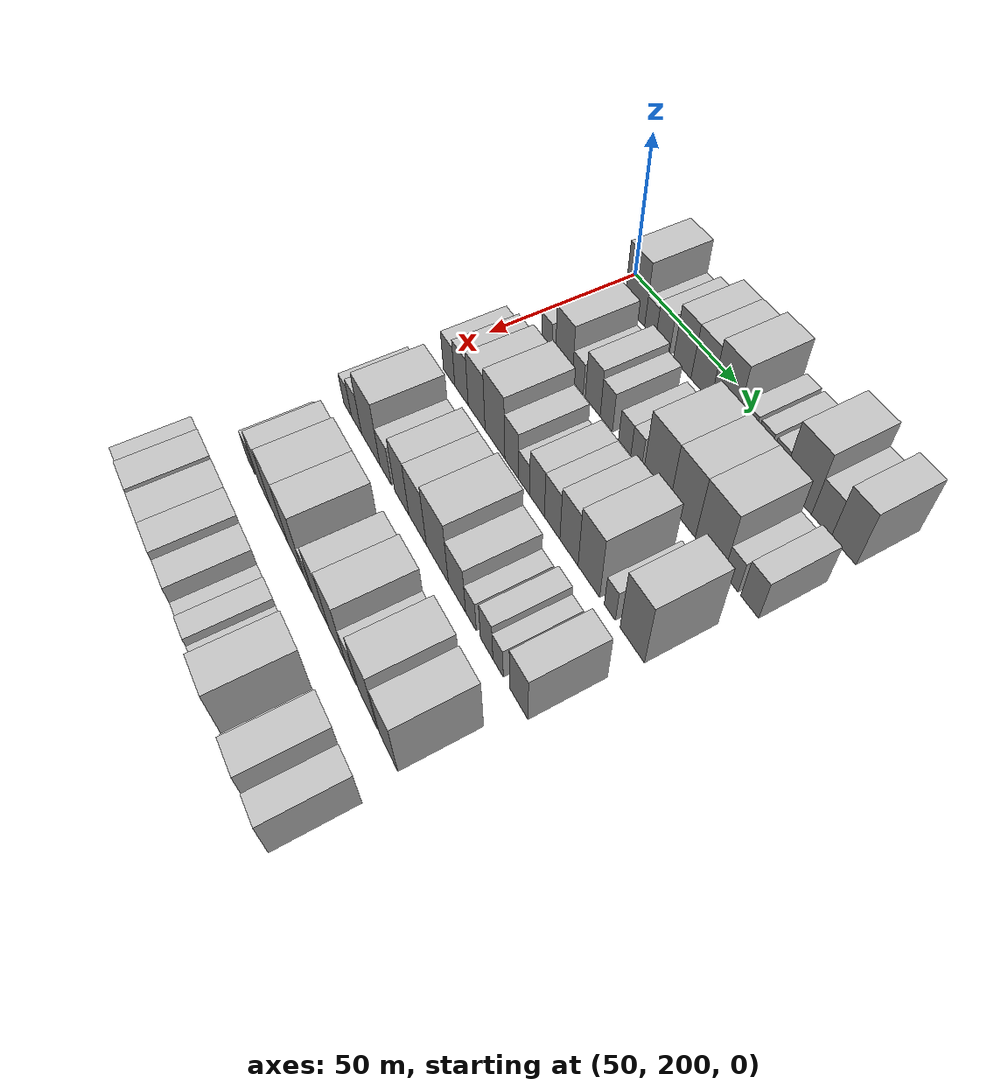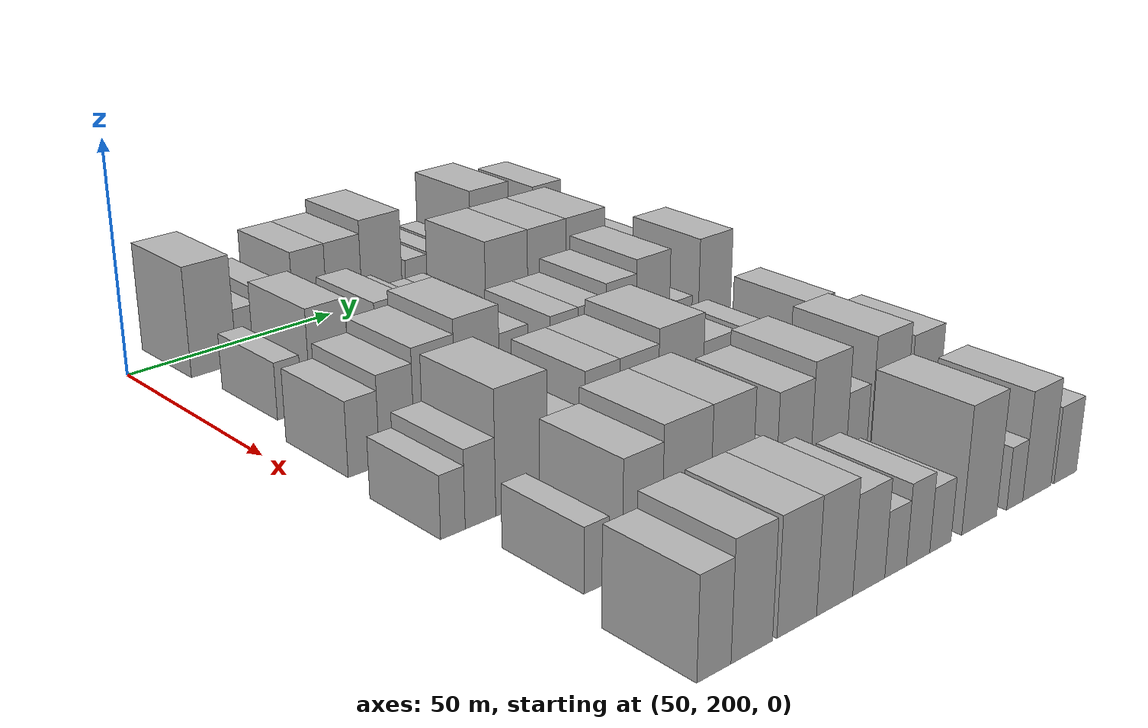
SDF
<sdf version="1.6">
 <world name="default">
  <model name="building_81">
   <static>1</static>
   <pose>50.0000 214.1891 0 0.000000 0.000000 0.000000</pose>
   <link name="link">
    <pose>0 0 12.00 0 0 0</pose>
    <collision name="collision"><geometry><box><size>20.0000 10.7154 24.0000</size></box></geometry></collision>
    <visual name="visual">
     <cast_shadows>0</cast_shadows>
     <geometry><box><size>20.0000 10.7154 24.0000</size></box></geometry>
     <material>
      <script>
       <uri>model://HANNAS_wall/materials/scripts</uri>
       <uri>model://HANNAS_wall/materials/textures</uri>
       <name>vrc/HANNAS_wall</name>
      </script>
     </material>
    </visual>
   </link>
  </model>
  <model name="building_82">
   <static>1</static>
   <pose>50.0000 222.4156 0 0.000000 0.000000 0.000000</pose>
   <link name="link">
    <pose>0 0 6.00 0 0 0</pose>
    <collision name="collision"><geometry><box><size>20.0000 5.7375 12.0000</size></box></geometry></collision>
    <visual name="visual">
     <cast_shadows>0</cast_shadows>
     <geometry><box><size>20.0000 5.7375 12.0000</size></box></geometry>
     <material>
      <script>
       <uri>model://HANNAS_wall/materials/scripts</uri>
       <uri>model://HANNAS_wall/materials/textures</uri>
       <name>vrc/HANNAS_wall</name>
      </script>
     </material>
    </visual>
   </link>
  </model>
  <model name="building_83">
   <static>1</static>
   <pose>50.0000 228.7024 0 0.000000 0.000000 0.000000</pose>
   <link name="link">
    <pose>0 0 7.50 0 0 0</pose>
    <collision name="collision"><geometry><box><size>20.0000 6.8360 15.0000</size></box></geometry></collision>
    <visual name="visual">
     <cast_shadows>0</cast_shadows>
     <geometry><box><size>20.0000 6.8360 15.0000</size></box></geometry>
     <material>
      <script>
       <uri>model://HANNAS_wall/materials/scripts</uri>
       <uri>model://HANNAS_wall/materials/textures</uri>
       <name>vrc/HANNAS_wall</name>
      </script>
     </material>
    </visual>
   </link>
  </model>
  <model name="building_84">
   <static>1</static>
   <pose>50.0000 238.3692 0 0.000000 0.000000 0.000000</pose>
   <link name="link">
    <pose>0 0 10.50 0 0 0</pose>
    <collision name="collision"><geometry><box><size>20.0000 8.4976 21.0000</size></box></geometry></collision>
    <visual name="visual">
     <cast_shadows>0</cast_shadows>
     <geometry><box><size>20.0000 8.4976 21.0000</size></box></geometry>
     <material>
      <script>
       <uri>model://HANNAS_wall/materials/scripts</uri>
       <uri>model://HANNAS_wall/materials/textures</uri>
       <name>vrc/HANNAS_wall</name>
      </script>
     </material>
    </visual>
   </link>
  </model>
  <model name="building_85">
   <static>1</static>
   <pose>50.0000 247.2409 0 0.000000 0.000000 0.000000</pose>
   <link name="link">
    <pose>0 0 10.50 0 0 0</pose>
    <collision name="collision"><geometry><box><size>20.0000 9.2458 21.0000</size></box></geometry></collision>
    <visual name="visual">
     <cast_shadows>0</cast_shadows>
     <geometry><box><size>20.0000 9.2458 21.0000</size></box></geometry>
     <material>
      <script>
       <uri>model://HANNAS_wall/materials/scripts</uri>
       <uri>model://HANNAS_wall/materials/textures</uri>
       <name>vrc/HANNAS_wall</name>
      </script>
     </material>
    </visual>
   </link>
  </model>
  <model name="building_86">
   <static>1</static>
   <pose>50.0000 257.3435 0 0.000000 0.000000 0.000000</pose>
   <link name="link">
    <pose>0 0 12.00 0 0 0</pose>
    <collision name="collision"><geometry><box><size>20.0000 10.9595 24.0000</size></box></geometry></collision>
    <visual name="visual">
     <cast_shadows>0</cast_shadows>
     <geometry><box><size>20.0000 10.9595 24.0000</size></box></geometry>
     <material>
      <script>
       <uri>model://HANNAS_wall/materials/scripts</uri>
       <uri>model://HANNAS_wall/materials/textures</uri>
       <name>vrc/HANNAS_wall</name>
      </script>
     </material>
    </visual>
   </link>
  </model>
  <model name="building_87">
   <static>1</static>
   <pose>50.0000 266.8194 0 0.000000 0.000000 0.000000</pose>
   <link name="link">
    <pose>0 0 6.00 0 0 0</pose>
    <collision name="collision"><geometry><box><size>20.0000 5.9923 12.0000</size></box></geometry></collision>
    <visual name="visual">
     <cast_shadows>0</cast_shadows>
     <geometry><box><size>20.0000 5.9923 12.0000</size></box></geometry>
     <material>
      <script>
       <uri>model://HANNAS_wall/materials/scripts</uri>
       <uri>model://HANNAS_wall/materials/textures</uri>
       <name>vrc/HANNAS_wall</name>
      </script>
     </material>
    </visual>
   </link>
  </model>
  <model name="building_88">
   <static>1</static>
   <pose>50.0000 273.5191 0 0.000000 0.000000 0.000000</pose>
   <link name="link">
    <pose>0 0 6.00 0 0 0</pose>
    <collision name="collision"><geometry><box><size>20.0000 5.4071 12.0000</size></box></geometry></collision>
    <visual name="visual">
     <cast_shadows>0</cast_shadows>
     <geometry><box><size>20.0000 5.4071 12.0000</size></box></geometry>
     <material>
      <script>
       <uri>model://HANNAS_wall/materials/scripts</uri>
       <uri>model://HANNAS_wall/materials/textures</uri>
       <name>vrc/HANNAS_wall</name>
      </script>
     </material>
    </visual>
   </link>
  </model>
  <model name="building_89">
   <static>1</static>
   <pose>50.0000 279.9135 0 0.000000 0.000000 0.000000</pose>
   <link name="link">
    <pose>0 0 6.00 0 0 0</pose>
    <collision name="collision"><geometry><box><size>20.0000 5.3817 12.0000</size></box></geometry></collision>
    <visual name="visual">
     <cast_shadows>0</cast_shadows>
     <geometry><box><size>20.0000 5.3817 12.0000</size></box></geometry>
     <material>
      <script>
       <uri>model://HANNAS_wall/materials/scripts</uri>
       <uri>model://HANNAS_wall/materials/textures</uri>
       <name>vrc/HANNAS_wall</name>
      </script>
     </material>
    </visual>
   </link>
  </model>
  <model name="building_90">
   <static>1</static>
   <pose>50.0000 288.3454 0 0.000000 0.000000 0.000000</pose>
   <link name="link">
    <pose>0 0 12.00 0 0 0</pose>
    <collision name="collision"><geometry><box><size>20.0000 11.4820 24.0000</size></box></geometry></collision>
    <visual name="visual">
     <cast_shadows>0</cast_shadows>
     <geometry><box><size>20.0000 11.4820 24.0000</size></box></geometry>
     <material>
      <script>
       <uri>model://HANNAS_wall/materials/scripts</uri>
       <uri>model://HANNAS_wall/materials/textures</uri>
       <name>vrc/HANNAS_wall</name>
      </script>
     </material>
    </visual>
   </link>
  </model>
  <model name="building_91">
   <static>1</static>
   <pose>50.0000 297.8150 0 0.000000 0.000000 0.000000</pose>
   <link name="link">
    <pose>0 0 7.50 0 0 0</pose>
    <collision name="collision"><geometry><box><size>20.0000 7.4572 15.0000</size></box></geometry></collision>
    <visual name="visual">
     <cast_shadows>0</cast_shadows>
     <geometry><box><size>20.0000 7.4572 15.0000</size></box></geometry>
     <material>
      <script>
       <uri>model://HANNAS_wall/materials/scripts</uri>
       <uri>model://HANNAS_wall/materials/textures</uri>
       <name>vrc/HANNAS_wall</name>
      </script>
     </material>
    </visual>
   </link>
  </model>
  <model name="building_92">
   <static>1</static>
   <pose>50.0000 306.0424 0 0.000000 0.000000 0.000000</pose>
   <link name="link">
    <pose>0 0 10.50 0 0 0</pose>
    <collision name="collision"><geometry><box><size>20.0000 8.9975 21.0000</size></box></geometry></collision>
    <visual name="visual">
     <cast_shadows>0</cast_shadows>
     <geometry><box><size>20.0000 8.9975 21.0000</size></box></geometry>
     <material>
      <script>
       <uri>model://HANNAS_wall/materials/scripts</uri>
       <uri>model://HANNAS_wall/materials/textures</uri>
       <name>vrc/HANNAS_wall</name>
      </script>
     </material>
    </visual>
   </link>
  </model>
  <model name="building_203">
   <static>1</static>
   <pose>79.0000 213.4304 0 0.000000 0.000000 0.000000</pose>
   <link name="link">
    <pose>0 0 6.00 0 0 0</pose>
    <collision name="collision"><geometry><box><size>20.0000 5.7345 12.0000</size></box></geometry></collision>
    <visual name="visual">
     <cast_shadows>0</cast_shadows>
     <geometry><box><size>20.0000 5.7345 12.0000</size></box></geometry>
     <material>
      <script>
       <uri>model://HANNAS_wall/materials/scripts</uri>
       <uri>model://HANNAS_wall/materials/textures</uri>
       <name>vrc/HANNAS_wall</name>
      </script>
     </material>
    </visual>
   </link>
  </model>
  <model name="building_204">
   <static>1</static>
   <pose>79.0000 222.9379 0 0.000000 0.000000 0.000000</pose>
   <link name="link">
    <pose>0 0 10.50 0 0 0</pose>
    <collision name="collision"><geometry><box><size>20.0000 9.2806 21.0000</size></box></geometry></collision>
    <visual name="visual">
     <cast_shadows>0</cast_shadows>
     <geometry><box><size>20.0000 9.2806 21.0000</size></box></geometry>
     <material>
      <script>
       <uri>model://HANNAS_wall/materials/scripts</uri>
       <uri>model://HANNAS_wall/materials/textures</uri>
       <name>vrc/HANNAS_wall</name>
      </script>
     </material>
    </visual>
   </link>
  </model>
  <model name="building_205">
   <static>1</static>
   <pose>79.0000 230.4730 0 0.000000 0.000000 0.000000</pose>
   <link name="link">
    <pose>0 0 6.00 0 0 0</pose>
    <collision name="collision"><geometry><box><size>20.0000 5.7895 12.0000</size></box></geometry></collision>
    <visual name="visual">
     <cast_shadows>0</cast_shadows>
     <geometry><box><size>20.0000 5.7895 12.0000</size></box></geometry>
     <material>
      <script>
       <uri>model://HANNAS_wall/materials/scripts</uri>
       <uri>model://HANNAS_wall/materials/textures</uri>
       <name>vrc/HANNAS_wall</name>
      </script>
     </material>
    </visual>
   </link>
  </model>
  <model name="building_206">
   <static>1</static>
   <pose>79.0000 238.2038 0 0.000000 0.000000 0.000000</pose>
   <link name="link">
    <pose>0 0 9.00 0 0 0</pose>
    <collision name="collision"><geometry><box><size>20.0000 7.6723 18.0000</size></box></geometry></collision>
    <visual name="visual">
     <cast_shadows>0</cast_shadows>
     <geometry><box><size>20.0000 7.6723 18.0000</size></box></geometry>
     <material>
      <script>
       <uri>model://HANNAS_wall/materials/scripts</uri>
       <uri>model://HANNAS_wall/materials/textures</uri>
       <name>vrc/HANNAS_wall</name>
      </script>
     </material>
    </visual>
   </link>
  </model>
  <model name="building_207">
   <static>1</static>
   <pose>79.0000 245.0749 0 0.000000 0.000000 0.000000</pose>
   <link name="link">
    <pose>0 0 7.50 0 0 0</pose>
    <collision name="collision"><geometry><box><size>20.0000 6.0700 15.0000</size></box></geometry></collision>
    <visual name="visual">
     <cast_shadows>0</cast_shadows>
     <geometry><box><size>20.0000 6.0700 15.0000</size></box></geometry>
     <material>
      <script>
       <uri>model://HANNAS_wall/materials/scripts</uri>
       <uri>model://HANNAS_wall/materials/textures</uri>
       <name>vrc/HANNAS_wall</name>
      </script>
     </material>
    </visual>
   </link>
  </model>
  <model name="building_208">
   <static>1</static>
   <pose>79.0000 254.0548 0 0.000000 0.000000 0.000000</pose>
   <link name="link">
    <pose>0 0 6.00 0 0 0</pose>
    <collision name="collision"><geometry><box><size>20.0000 5.8897 12.0000</size></box></geometry></collision>
    <visual name="visual">
     <cast_shadows>0</cast_shadows>
     <geometry><box><size>20.0000 5.8897 12.0000</size></box></geometry>
     <material>
      <script>
       <uri>model://HANNAS_wall/materials/scripts</uri>
       <uri>model://HANNAS_wall/materials/textures</uri>
       <name>vrc/HANNAS_wall</name>
      </script>
     </material>
    </visual>
   </link>
  </model>
  <model name="building_209">
   <static>1</static>
   <pose>79.0000 259.5007 0 0.000000 0.000000 0.000000</pose>
   <link name="link">
    <pose>0 0 6.00 0 0 0</pose>
    <collision name="collision"><geometry><box><size>20.0000 5.0021 12.0000</size></box></geometry></collision>
    <visual name="visual">
     <cast_shadows>0</cast_shadows>
     <geometry><box><size>20.0000 5.0021 12.0000</size></box></geometry>
     <material>
      <script>
       <uri>model://HANNAS_wall/materials/scripts</uri>
       <uri>model://HANNAS_wall/materials/textures</uri>
       <name>vrc/HANNAS_wall</name>
      </script>
     </material>
    </visual>
   </link>
  </model>
  <model name="building_210">
   <static>1</static>
   <pose>79.0000 268.8564 0 0.000000 0.000000 0.000000</pose>
   <link name="link">
    <pose>0 0 12.00 0 0 0</pose>
    <collision name="collision"><geometry><box><size>20.0000 11.7094 24.0000</size></box></geometry></collision>
    <visual name="visual">
     <cast_shadows>0</cast_shadows>
     <geometry><box><size>20.0000 11.7094 24.0000</size></box></geometry>
     <material>
      <script>
       <uri>model://HANNAS_wall/materials/scripts</uri>
       <uri>model://HANNAS_wall/materials/textures</uri>
       <name>vrc/HANNAS_wall</name>
      </script>
     </material>
    </visual>
   </link>
  </model>
  <model name="building_211">
   <static>1</static>
   <pose>79.0000 280.2098 0 0.000000 0.000000 0.000000</pose>
   <link name="link">
    <pose>0 0 12.00 0 0 0</pose>
    <collision name="collision"><geometry><box><size>20.0000 10.9975 24.0000</size></box></geometry></collision>
    <visual name="visual">
     <cast_shadows>0</cast_shadows>
     <geometry><box><size>20.0000 10.9975 24.0000</size></box></geometry>
     <material>
      <script>
       <uri>model://HANNAS_wall/materials/scripts</uri>
       <uri>model://HANNAS_wall/materials/textures</uri>
       <name>vrc/HANNAS_wall</name>
      </script>
     </material>
    </visual>
   </link>
  </model>
  <model name="building_212">
   <static>1</static>
   <pose>79.0000 291.5499 0 0.000000 0.000000 0.000000</pose>
   <link name="link">
    <pose>0 0 12.00 0 0 0</pose>
    <collision name="collision"><geometry><box><size>20.0000 11.6826 24.0000</size></box></geometry></collision>
    <visual name="visual">
     <cast_shadows>0</cast_shadows>
     <geometry><box><size>20.0000 11.6826 24.0000</size></box></geometry>
     <material>
      <script>
       <uri>model://HANNAS_wall/materials/scripts</uri>
       <uri>model://HANNAS_wall/materials/textures</uri>
       <name>vrc/HANNAS_wall</name>
      </script>
     </material>
    </visual>
   </link>
  </model>
  <model name="building_213">
   <static>1</static>
   <pose>79.0000 300.1617 0 0.000000 0.000000 0.000000</pose>
   <link name="link">
    <pose>0 0 6.00 0 0 0</pose>
    <collision name="collision"><geometry><box><size>20.0000 5.5409 12.0000</size></box></geometry></collision>
    <visual name="visual">
     <cast_shadows>0</cast_shadows>
     <geometry><box><size>20.0000 5.5409 12.0000</size></box></geometry>
     <material>
      <script>
       <uri>model://HANNAS_wall/materials/scripts</uri>
       <uri>model://HANNAS_wall/materials/textures</uri>
       <name>vrc/HANNAS_wall</name>
      </script>
     </material>
    </visual>
   </link>
  </model>
  <model name="building_214">
   <static>1</static>
   <pose>79.0000 307.3325 0 0.000000 0.000000 0.000000</pose>
   <link name="link">
    <pose>0 0 7.50 0 0 0</pose>
    <collision name="collision"><geometry><box><size>20.0000 6.8008 15.0000</size></box></geometry></collision>
    <visual name="visual">
     <cast_shadows>0</cast_shadows>
     <geometry><box><size>20.0000 6.8008 15.0000</size></box></geometry>
     <material>
      <script>
       <uri>model://HANNAS_wall/materials/scripts</uri>
       <uri>model://HANNAS_wall/materials/textures</uri>
       <name>vrc/HANNAS_wall</name>
      </script>
     </material>
    </visual>
   </link>
  </model>
  <model name="building_321">
   <static>1</static>
   <pose>108.0000 210.0504 0 0.000000 0.000000 0.000000</pose>
   <link name="link">
    <pose>0 0 7.50 0 0 0</pose>
    <collision name="collision"><geometry><box><size>20.0000 6.9880 15.0000</size></box></geometry></collision>
    <visual name="visual">
     <cast_shadows>0</cast_shadows>
     <geometry><box><size>20.0000 6.9880 15.0000</size></box></geometry>
     <material>
      <script>
       <uri>model://HANNAS_wall/materials/scripts</uri>
       <uri>model://HANNAS_wall/materials/textures</uri>
       <name>vrc/HANNAS_wall</name>
      </script>
     </material>
    </visual>
   </link>
  </model>
  <model name="building_322">
   <static>1</static>
   <pose>108.0000 217.5539 0 0.000000 0.000000 0.000000</pose>
   <link name="link">
    <pose>0 0 9.00 0 0 0</pose>
    <collision name="collision"><geometry><box><size>20.0000 8.0191 18.0000</size></box></geometry></collision>
    <visual name="visual">
     <cast_shadows>0</cast_shadows>
     <geometry><box><size>20.0000 8.0191 18.0000</size></box></geometry>
     <material>
      <script>
       <uri>model://HANNAS_wall/materials/scripts</uri>
       <uri>model://HANNAS_wall/materials/textures</uri>
       <name>vrc/HANNAS_wall</name>
      </script>
     </material>
    </visual>
   </link>
  </model>
  <model name="building_323">
   <static>1</static>
   <pose>108.0000 226.4469 0 0.000000 0.000000 0.000000</pose>
   <link name="link">
    <pose>0 0 10.50 0 0 0</pose>
    <collision name="collision"><geometry><box><size>20.0000 9.7668 21.0000</size></box></geometry></collision>
    <visual name="visual">
     <cast_shadows>0</cast_shadows>
     <geometry><box><size>20.0000 9.7668 21.0000</size></box></geometry>
     <material>
      <script>
       <uri>model://HANNAS_wall/materials/scripts</uri>
       <uri>model://HANNAS_wall/materials/textures</uri>
       <name>vrc/HANNAS_wall</name>
      </script>
     </material>
    </visual>
   </link>
  </model>
  <model name="building_324">
   <static>1</static>
   <pose>108.0000 236.8101 0 0.000000 0.000000 0.000000</pose>
   <link name="link">
    <pose>0 0 12.00 0 0 0</pose>
    <collision name="collision"><geometry><box><size>20.0000 10.9597 24.0000</size></box></geometry></collision>
    <visual name="visual">
     <cast_shadows>0</cast_shadows>
     <geometry><box><size>20.0000 10.9597 24.0000</size></box></geometry>
     <material>
      <script>
       <uri>model://HANNAS_wall/materials/scripts</uri>
       <uri>model://HANNAS_wall/materials/textures</uri>
       <name>vrc/HANNAS_wall</name>
      </script>
     </material>
    </visual>
   </link>
  </model>
  <model name="building_325">
   <static>1</static>
   <pose>108.0000 245.9807 0 0.000000 0.000000 0.000000</pose>
   <link name="link">
    <pose>0 0 9.00 0 0 0</pose>
    <collision name="collision"><geometry><box><size>20.0000 7.3815 18.0000</size></box></geometry></collision>
    <visual name="visual">
     <cast_shadows>0</cast_shadows>
     <geometry><box><size>20.0000 7.3815 18.0000</size></box></geometry>
     <material>
      <script>
       <uri>model://HANNAS_wall/materials/scripts</uri>
       <uri>model://HANNAS_wall/materials/textures</uri>
       <name>vrc/HANNAS_wall</name>
      </script>
     </material>
    </visual>
   </link>
  </model>
  <model name="building_326">
   <static>1</static>
   <pose>108.0000 252.5138 0 0.000000 0.000000 0.000000</pose>
   <link name="link">
    <pose>0 0 6.00 0 0 0</pose>
    <collision name="collision"><geometry><box><size>20.0000 5.6846 12.0000</size></box></geometry></collision>
    <visual name="visual">
     <cast_shadows>0</cast_shadows>
     <geometry><box><size>20.0000 5.6846 12.0000</size></box></geometry>
     <material>
      <script>
       <uri>model://HANNAS_wall/materials/scripts</uri>
       <uri>model://HANNAS_wall/materials/textures</uri>
       <name>vrc/HANNAS_wall</name>
      </script>
     </material>
    </visual>
   </link>
  </model>
  <model name="building_327">
   <static>1</static>
   <pose>108.0000 259.0391 0 0.000000 0.000000 0.000000</pose>
   <link name="link">
    <pose>0 0 9.00 0 0 0</pose>
    <collision name="collision"><geometry><box><size>20.0000 7.3661 18.0000</size></box></geometry></collision>
    <visual name="visual">
     <cast_shadows>0</cast_shadows>
     <geometry><box><size>20.0000 7.3661 18.0000</size></box></geometry>
     <material>
      <script>
       <uri>model://HANNAS_wall/materials/scripts</uri>
       <uri>model://HANNAS_wall/materials/textures</uri>
       <name>vrc/HANNAS_wall</name>
      </script>
     </material>
    </visual>
   </link>
  </model>
  <model name="building_328">
   <static>1</static>
   <pose>108.0000 266.4954 0 0.000000 0.000000 0.000000</pose>
   <link name="link">
    <pose>0 0 9.00 0 0 0</pose>
    <collision name="collision"><geometry><box><size>20.0000 7.5464 18.0000</size></box></geometry></collision>
    <visual name="visual">
     <cast_shadows>0</cast_shadows>
     <geometry><box><size>20.0000 7.5464 18.0000</size></box></geometry>
     <material>
      <script>
       <uri>model://HANNAS_wall/materials/scripts</uri>
       <uri>model://HANNAS_wall/materials/textures</uri>
       <name>vrc/HANNAS_wall</name>
      </script>
     </material>
    </visual>
   </link>
  </model>
  <model name="building_329">
   <static>1</static>
   <pose>108.0000 274.5242 0 0.000000 0.000000 0.000000</pose>
   <link name="link">
    <pose>0 0 10.50 0 0 0</pose>
    <collision name="collision"><geometry><box><size>20.0000 8.5112 21.0000</size></box></geometry></collision>
    <visual name="visual">
     <cast_shadows>0</cast_shadows>
     <geometry><box><size>20.0000 8.5112 21.0000</size></box></geometry>
     <material>
      <script>
       <uri>model://HANNAS_wall/materials/scripts</uri>
       <uri>model://HANNAS_wall/materials/textures</uri>
       <name>vrc/HANNAS_wall</name>
      </script>
     </material>
    </visual>
   </link>
  </model>
  <model name="building_330">
   <static>1</static>
   <pose>108.0000 283.6453 0 0.000000 0.000000 0.000000</pose>
   <link name="link">
    <pose>0 0 12.00 0 0 0</pose>
    <collision name="collision"><geometry><box><size>20.0000 9.7309 24.0000</size></box></geometry></collision>
    <visual name="visual">
     <cast_shadows>0</cast_shadows>
     <geometry><box><size>20.0000 9.7309 24.0000</size></box></geometry>
     <material>
      <script>
       <uri>model://HANNAS_wall/materials/scripts</uri>
       <uri>model://HANNAS_wall/materials/textures</uri>
       <name>vrc/HANNAS_wall</name>
      </script>
     </material>
    </visual>
   </link>
  </model>
  <model name="building_331">
   <static>1</static>
   <pose>108.0000 292.9109 0 0.000000 0.000000 0.000000</pose>
   <link name="link">
    <pose>0 0 6.00 0 0 0</pose>
    <collision name="collision"><geometry><box><size>20.0000 4.8004 12.0000</size></box></geometry></collision>
    <visual name="visual">
     <cast_shadows>0</cast_shadows>
     <geometry><box><size>20.0000 4.8004 12.0000</size></box></geometry>
     <material>
      <script>
       <uri>model://HANNAS_wall/materials/scripts</uri>
       <uri>model://HANNAS_wall/materials/textures</uri>
       <name>vrc/HANNAS_wall</name>
      </script>
     </material>
    </visual>
   </link>
  </model>
  <model name="building_332">
   <static>1</static>
   <pose>108.0000 302.3181 0 0.000000 0.000000 0.000000</pose>
   <link name="link">
    <pose>0 0 12.00 0 0 0</pose>
    <collision name="collision"><geometry><box><size>20.0000 10.0139 24.0000</size></box></geometry></collision>
    <visual name="visual">
     <cast_shadows>0</cast_shadows>
     <geometry><box><size>20.0000 10.0139 24.0000</size></box></geometry>
     <material>
      <script>
       <uri>model://HANNAS_wall/materials/scripts</uri>
       <uri>model://HANNAS_wall/materials/textures</uri>
       <name>vrc/HANNAS_wall</name>
      </script>
     </material>
    </visual>
   </link>
  </model>
  <model name="building_435">
   <static>1</static>
   <pose>137.0000 207.4181 0 0.000000 0.000000 0.000000</pose>
   <link name="link">
    <pose>0 0 6.00 0 0 0</pose>
    <collision name="collision"><geometry><box><size>20.0000 5.3056 12.0000</size></box></geometry></collision>
    <visual name="visual">
     <cast_shadows>0</cast_shadows>
     <geometry><box><size>20.0000 5.3056 12.0000</size></box></geometry>
     <material>
      <script>
       <uri>model://HANNAS_wall/materials/scripts</uri>
       <uri>model://HANNAS_wall/materials/textures</uri>
       <name>vrc/HANNAS_wall</name>
      </script>
     </material>
    </visual>
   </link>
  </model>
  <model name="building_436">
   <static>1</static>
   <pose>137.0000 213.4498 0 0.000000 0.000000 0.000000</pose>
   <link name="link">
    <pose>0 0 7.50 0 0 0</pose>
    <collision name="collision"><geometry><box><size>20.0000 6.7577 15.0000</size></box></geometry></collision>
    <visual name="visual">
     <cast_shadows>0</cast_shadows>
     <geometry><box><size>20.0000 6.7577 15.0000</size></box></geometry>
     <material>
      <script>
       <uri>model://HANNAS_wall/materials/scripts</uri>
       <uri>model://HANNAS_wall/materials/textures</uri>
       <name>vrc/HANNAS_wall</name>
      </script>
     </material>
    </visual>
   </link>
  </model>
  <model name="building_437">
   <static>1</static>
   <pose>137.0000 222.7717 0 0.000000 0.000000 0.000000</pose>
   <link name="link">
    <pose>0 0 12.00 0 0 0</pose>
    <collision name="collision"><geometry><box><size>20.0000 11.8861 24.0000</size></box></geometry></collision>
    <visual name="visual">
     <cast_shadows>0</cast_shadows>
     <geometry><box><size>20.0000 11.8861 24.0000</size></box></geometry>
     <material>
      <script>
       <uri>model://HANNAS_wall/materials/scripts</uri>
       <uri>model://HANNAS_wall/materials/textures</uri>
       <name>vrc/HANNAS_wall</name>
      </script>
     </material>
    </visual>
   </link>
  </model>
  <model name="building_438">
   <static>1</static>
   <pose>137.0000 232.2244 0 0.000000 0.000000 0.000000</pose>
   <link name="link">
    <pose>0 0 7.50 0 0 0</pose>
    <collision name="collision"><geometry><box><size>20.0000 7.0193 15.0000</size></box></geometry></collision>
    <visual name="visual">
     <cast_shadows>0</cast_shadows>
     <geometry><box><size>20.0000 7.0193 15.0000</size></box></geometry>
     <material>
      <script>
       <uri>model://HANNAS_wall/materials/scripts</uri>
       <uri>model://HANNAS_wall/materials/textures</uri>
       <name>vrc/HANNAS_wall</name>
      </script>
     </material>
    </visual>
   </link>
  </model>
  <model name="building_439">
   <static>1</static>
   <pose>137.0000 241.9520 0 0.000000 0.000000 0.000000</pose>
   <link name="link">
    <pose>0 0 10.50 0 0 0</pose>
    <collision name="collision"><geometry><box><size>20.0000 8.4360 21.0000</size></box></geometry></collision>
    <visual name="visual">
     <cast_shadows>0</cast_shadows>
     <geometry><box><size>20.0000 8.4360 21.0000</size></box></geometry>
     <material>
      <script>
       <uri>model://HANNAS_wall/materials/scripts</uri>
       <uri>model://HANNAS_wall/materials/textures</uri>
       <name>vrc/HANNAS_wall</name>
      </script>
     </material>
    </visual>
   </link>
  </model>
  <model name="building_440">
   <static>1</static>
   <pose>137.0000 251.1342 0 0.000000 0.000000 0.000000</pose>
   <link name="link">
    <pose>0 0 10.50 0 0 0</pose>
    <collision name="collision"><geometry><box><size>20.0000 9.9284 21.0000</size></box></geometry></collision>
    <visual name="visual">
     <cast_shadows>0</cast_shadows>
     <geometry><box><size>20.0000 9.9284 21.0000</size></box></geometry>
     <material>
      <script>
       <uri>model://HANNAS_wall/materials/scripts</uri>
       <uri>model://HANNAS_wall/materials/textures</uri>
       <name>vrc/HANNAS_wall</name>
      </script>
     </material>
    </visual>
   </link>
  </model>
  <model name="building_441">
   <static>1</static>
   <pose>137.0000 262.0778 0 0.000000 0.000000 0.000000</pose>
   <link name="link">
    <pose>0 0 12.00 0 0 0</pose>
    <collision name="collision"><geometry><box><size>20.0000 11.9588 24.0000</size></box></geometry></collision>
    <visual name="visual">
     <cast_shadows>0</cast_shadows>
     <geometry><box><size>20.0000 11.9588 24.0000</size></box></geometry>
     <material>
      <script>
       <uri>model://HANNAS_wall/materials/scripts</uri>
       <uri>model://HANNAS_wall/materials/textures</uri>
       <name>vrc/HANNAS_wall</name>
      </script>
     </material>
    </visual>
   </link>
  </model>
  <model name="building_442">
   <static>1</static>
   <pose>137.0000 272.5037 0 0.000000 0.000000 0.000000</pose>
   <link name="link">
    <pose>0 0 9.00 0 0 0</pose>
    <collision name="collision"><geometry><box><size>20.0000 8.8930 18.0000</size></box></geometry></collision>
    <visual name="visual">
     <cast_shadows>0</cast_shadows>
     <geometry><box><size>20.0000 8.8930 18.0000</size></box></geometry>
     <material>
      <script>
       <uri>model://HANNAS_wall/materials/scripts</uri>
       <uri>model://HANNAS_wall/materials/textures</uri>
       <name>vrc/HANNAS_wall</name>
      </script>
     </material>
    </visual>
   </link>
  </model>
  <model name="building_443">
   <static>1</static>
   <pose>137.0000 279.6109 0 0.000000 0.000000 0.000000</pose>
   <link name="link">
    <pose>0 0 6.00 0 0 0</pose>
    <collision name="collision"><geometry><box><size>20.0000 5.3216 12.0000</size></box></geometry></collision>
    <visual name="visual">
     <cast_shadows>0</cast_shadows>
     <geometry><box><size>20.0000 5.3216 12.0000</size></box></geometry>
     <material>
      <script>
       <uri>model://HANNAS_wall/materials/scripts</uri>
       <uri>model://HANNAS_wall/materials/textures</uri>
       <name>vrc/HANNAS_wall</name>
      </script>
     </material>
    </visual>
   </link>
  </model>
  <model name="building_444">
   <static>1</static>
   <pose>137.0000 287.2826 0 0.000000 0.000000 0.000000</pose>
   <link name="link">
    <pose>0 0 7.50 0 0 0</pose>
    <collision name="collision"><geometry><box><size>20.0000 6.0218 15.0000</size></box></geometry></collision>
    <visual name="visual">
     <cast_shadows>0</cast_shadows>
     <geometry><box><size>20.0000 6.0218 15.0000</size></box></geometry>
     <material>
      <script>
       <uri>model://HANNAS_wall/materials/scripts</uri>
       <uri>model://HANNAS_wall/materials/textures</uri>
       <name>vrc/HANNAS_wall</name>
      </script>
     </material>
    </visual>
   </link>
  </model>
  <model name="building_445">
   <static>1</static>
   <pose>137.0000 292.7166 0 0.000000 0.000000 0.000000</pose>
   <link name="link">
    <pose>0 0 6.00 0 0 0</pose>
    <collision name="collision"><geometry><box><size>20.0000 4.8462 12.0000</size></box></geometry></collision>
    <visual name="visual">
     <cast_shadows>0</cast_shadows>
     <geometry><box><size>20.0000 4.8462 12.0000</size></box></geometry>
     <material>
      <script>
       <uri>model://HANNAS_wall/materials/scripts</uri>
       <uri>model://HANNAS_wall/materials/textures</uri>
       <name>vrc/HANNAS_wall</name>
      </script>
     </material>
    </visual>
   </link>
  </model>
  <model name="building_446">
   <static>1</static>
   <pose>137.0000 302.1977 0 0.000000 0.000000 0.000000</pose>
   <link name="link">
    <pose>0 0 9.00 0 0 0</pose>
    <collision name="collision"><geometry><box><size>20.0000 8.1160 18.0000</size></box></geometry></collision>
    <visual name="visual">
     <cast_shadows>0</cast_shadows>
     <geometry><box><size>20.0000 8.1160 18.0000</size></box></geometry>
     <material>
      <script>
       <uri>model://HANNAS_wall/materials/scripts</uri>
       <uri>model://HANNAS_wall/materials/textures</uri>
       <name>vrc/HANNAS_wall</name>
      </script>
     </material>
    </visual>
   </link>
  </model>
  <model name="building_553">
   <static>1</static>
   <pose>166.0000 213.3127 0 0.000000 0.000000 0.000000</pose>
   <link name="link">
    <pose>0 0 6.00 0 0 0</pose>
    <collision name="collision"><geometry><box><size>20.0000 5.4009 12.0000</size></box></geometry></collision>
    <visual name="visual">
     <cast_shadows>0</cast_shadows>
     <geometry><box><size>20.0000 5.4009 12.0000</size></box></geometry>
     <material>
      <script>
       <uri>model://HANNAS_wall/materials/scripts</uri>
       <uri>model://HANNAS_wall/materials/textures</uri>
       <name>vrc/HANNAS_wall</name>
      </script>
     </material>
    </visual>
   </link>
  </model>
  <model name="building_554">
   <static>1</static>
   <pose>166.0000 223.5091 0 0.000000 0.000000 0.000000</pose>
   <link name="link">
    <pose>0 0 10.50 0 0 0</pose>
    <collision name="collision"><geometry><box><size>20.0000 8.9918 21.0000</size></box></geometry></collision>
    <visual name="visual">
     <cast_shadows>0</cast_shadows>
     <geometry><box><size>20.0000 8.9918 21.0000</size></box></geometry>
     <material>
      <script>
       <uri>model://HANNAS_wall/materials/scripts</uri>
       <uri>model://HANNAS_wall/materials/textures</uri>
       <name>vrc/HANNAS_wall</name>
      </script>
     </material>
    </visual>
   </link>
  </model>
  <model name="building_555">
   <static>1</static>
   <pose>166.0000 233.7342 0 0.000000 0.000000 0.000000</pose>
   <link name="link">
    <pose>0 0 12.00 0 0 0</pose>
    <collision name="collision"><geometry><box><size>20.0000 11.4584 24.0000</size></box></geometry></collision>
    <visual name="visual">
     <cast_shadows>0</cast_shadows>
     <geometry><box><size>20.0000 11.4584 24.0000</size></box></geometry>
     <material>
      <script>
       <uri>model://HANNAS_wall/materials/scripts</uri>
       <uri>model://HANNAS_wall/materials/textures</uri>
       <name>vrc/HANNAS_wall</name>
      </script>
     </material>
    </visual>
   </link>
  </model>
  <model name="building_556">
   <static>1</static>
   <pose>166.0000 244.6995 0 0.000000 0.000000 0.000000</pose>
   <link name="link">
    <pose>0 0 12.00 0 0 0</pose>
    <collision name="collision"><geometry><box><size>20.0000 10.4722 24.0000</size></box></geometry></collision>
    <visual name="visual">
     <cast_shadows>0</cast_shadows>
     <geometry><box><size>20.0000 10.4722 24.0000</size></box></geometry>
     <material>
      <script>
       <uri>model://HANNAS_wall/materials/scripts</uri>
       <uri>model://HANNAS_wall/materials/textures</uri>
       <name>vrc/HANNAS_wall</name>
      </script>
     </material>
    </visual>
   </link>
  </model>
  <model name="building_557">
   <static>1</static>
   <pose>166.0000 252.5105 0 0.000000 0.000000 0.000000</pose>
   <link name="link">
    <pose>0 0 6.00 0 0 0</pose>
    <collision name="collision"><geometry><box><size>20.0000 5.1498 12.0000</size></box></geometry></collision>
    <visual name="visual">
     <cast_shadows>0</cast_shadows>
     <geometry><box><size>20.0000 5.1498 12.0000</size></box></geometry>
     <material>
      <script>
       <uri>model://HANNAS_wall/materials/scripts</uri>
       <uri>model://HANNAS_wall/materials/textures</uri>
       <name>vrc/HANNAS_wall</name>
      </script>
     </material>
    </visual>
   </link>
  </model>
  <model name="building_558">
   <static>1</static>
   <pose>166.0000 260.7093 0 0.000000 0.000000 0.000000</pose>
   <link name="link">
    <pose>0 0 10.50 0 0 0</pose>
    <collision name="collision"><geometry><box><size>20.0000 9.2478 21.0000</size></box></geometry></collision>
    <visual name="visual">
     <cast_shadows>0</cast_shadows>
     <geometry><box><size>20.0000 9.2478 21.0000</size></box></geometry>
     <material>
      <script>
       <uri>model://HANNAS_wall/materials/scripts</uri>
       <uri>model://HANNAS_wall/materials/textures</uri>
       <name>vrc/HANNAS_wall</name>
      </script>
     </material>
    </visual>
   </link>
  </model>
  <model name="building_559">
   <static>1</static>
   <pose>166.0000 270.3350 0 0.000000 0.000000 0.000000</pose>
   <link name="link">
    <pose>0 0 12.00 0 0 0</pose>
    <collision name="collision"><geometry><box><size>20.0000 10.0036 24.0000</size></box></geometry></collision>
    <visual name="visual">
     <cast_shadows>0</cast_shadows>
     <geometry><box><size>20.0000 10.0036 24.0000</size></box></geometry>
     <material>
      <script>
       <uri>model://HANNAS_wall/materials/scripts</uri>
       <uri>model://HANNAS_wall/materials/textures</uri>
       <name>vrc/HANNAS_wall</name>
      </script>
     </material>
    </visual>
   </link>
  </model>
  <model name="building_560">
   <static>1</static>
   <pose>166.0000 278.3534 0 0.000000 0.000000 0.000000</pose>
   <link name="link">
    <pose>0 0 7.50 0 0 0</pose>
    <collision name="collision"><geometry><box><size>20.0000 6.0333 15.0000</size></box></geometry></collision>
    <visual name="visual">
     <cast_shadows>0</cast_shadows>
     <geometry><box><size>20.0000 6.0333 15.0000</size></box></geometry>
     <material>
      <script>
       <uri>model://HANNAS_wall/materials/scripts</uri>
       <uri>model://HANNAS_wall/materials/textures</uri>
       <name>vrc/HANNAS_wall</name>
      </script>
     </material>
    </visual>
   </link>
  </model>
  <model name="building_561">
   <static>1</static>
   <pose>166.0000 287.5037 0 0.000000 0.000000 0.000000</pose>
   <link name="link">
    <pose>0 0 12.00 0 0 0</pose>
    <collision name="collision"><geometry><box><size>20.0000 10.2673 24.0000</size></box></geometry></collision>
    <visual name="visual">
     <cast_shadows>0</cast_shadows>
     <geometry><box><size>20.0000 10.2673 24.0000</size></box></geometry>
     <material>
      <script>
       <uri>model://HANNAS_wall/materials/scripts</uri>
       <uri>model://HANNAS_wall/materials/textures</uri>
       <name>vrc/HANNAS_wall</name>
      </script>
     </material>
    </visual>
   </link>
  </model>
  <model name="building_562">
   <static>1</static>
   <pose>166.0000 298.3214 0 0.000000 0.000000 0.000000</pose>
   <link name="link">
    <pose>0 0 10.50 0 0 0</pose>
    <collision name="collision"><geometry><box><size>20.0000 9.3679 21.0000</size></box></geometry></collision>
    <visual name="visual">
     <cast_shadows>0</cast_shadows>
     <geometry><box><size>20.0000 9.3679 21.0000</size></box></geometry>
     <material>
      <script>
       <uri>model://HANNAS_wall/materials/scripts</uri>
       <uri>model://HANNAS_wall/materials/textures</uri>
       <name>vrc/HANNAS_wall</name>
      </script>
     </material>
    </visual>
   </link>
  </model>
  <model name="building_662">
   <static>1</static>
   <pose>195.0000 209.6072 0 0.000000 0.000000 0.000000</pose>
   <link name="link">
    <pose>0 0 9.00 0 0 0</pose>
    <collision name="collision"><geometry><box><size>20.0000 7.2754 18.0000</size></box></geometry></collision>
    <visual name="visual">
     <cast_shadows>0</cast_shadows>
     <geometry><box><size>20.0000 7.2754 18.0000</size></box></geometry>
     <material>
      <script>
       <uri>model://HANNAS_wall/materials/scripts</uri>
       <uri>model://HANNAS_wall/materials/textures</uri>
       <name>vrc/HANNAS_wall</name>
      </script>
     </material>
    </visual>
   </link>
  </model>
  <model name="building_663">
   <static>1</static>
   <pose>195.0000 217.8480 0 0.000000 0.000000 0.000000</pose>
   <link name="link">
    <pose>0 0 10.50 0 0 0</pose>
    <collision name="collision"><geometry><box><size>20.0000 9.2062 21.0000</size></box></geometry></collision>
    <visual name="visual">
     <cast_shadows>0</cast_shadows>
     <geometry><box><size>20.0000 9.2062 21.0000</size></box></geometry>
     <material>
      <script>
       <uri>model://HANNAS_wall/materials/scripts</uri>
       <uri>model://HANNAS_wall/materials/textures</uri>
       <name>vrc/HANNAS_wall</name>
      </script>
     </material>
    </visual>
   </link>
  </model>
  <model name="building_664">
   <static>1</static>
   <pose>195.0000 228.0660 0 0.000000 0.000000 0.000000</pose>
   <link name="link">
    <pose>0 0 10.50 0 0 0</pose>
    <collision name="collision"><geometry><box><size>20.0000 9.2299 21.0000</size></box></geometry></collision>
    <visual name="visual">
     <cast_shadows>0</cast_shadows>
     <geometry><box><size>20.0000 9.2299 21.0000</size></box></geometry>
     <material>
      <script>
       <uri>model://HANNAS_wall/materials/scripts</uri>
       <uri>model://HANNAS_wall/materials/textures</uri>
       <name>vrc/HANNAS_wall</name>
      </script>
     </material>
    </visual>
   </link>
  </model>
  <model name="building_665">
   <static>1</static>
   <pose>195.0000 237.0805 0 0.000000 0.000000 0.000000</pose>
   <link name="link">
    <pose>0 0 10.50 0 0 0</pose>
    <collision name="collision"><geometry><box><size>20.0000 8.7991 21.0000</size></box></geometry></collision>
    <visual name="visual">
     <cast_shadows>0</cast_shadows>
     <geometry><box><size>20.0000 8.7991 21.0000</size></box></geometry>
     <material>
      <script>
       <uri>model://HANNAS_wall/materials/scripts</uri>
       <uri>model://HANNAS_wall/materials/textures</uri>
       <name>vrc/HANNAS_wall</name>
      </script>
     </material>
    </visual>
   </link>
  </model>
  <model name="building_666">
   <static>1</static>
   <pose>195.0000 245.5405 0 0.000000 0.000000 0.000000</pose>
   <link name="link">
    <pose>0 0 9.00 0 0 0</pose>
    <collision name="collision"><geometry><box><size>20.0000 8.1209 18.0000</size></box></geometry></collision>
    <visual name="visual">
     <cast_shadows>0</cast_shadows>
     <geometry><box><size>20.0000 8.1209 18.0000</size></box></geometry>
     <material>
      <script>
       <uri>model://HANNAS_wall/materials/scripts</uri>
       <uri>model://HANNAS_wall/materials/textures</uri>
       <name>vrc/HANNAS_wall</name>
      </script>
     </material>
    </visual>
   </link>
  </model>
  <model name="building_667">
   <static>1</static>
   <pose>195.0000 252.4267 0 0.000000 0.000000 0.000000</pose>
   <link name="link">
    <pose>0 0 6.00 0 0 0</pose>
    <collision name="collision"><geometry><box><size>20.0000 5.6515 12.0000</size></box></geometry></collision>
    <visual name="visual">
     <cast_shadows>0</cast_shadows>
     <geometry><box><size>20.0000 5.6515 12.0000</size></box></geometry>
     <material>
      <script>
       <uri>model://HANNAS_wall/materials/scripts</uri>
       <uri>model://HANNAS_wall/materials/textures</uri>
       <name>vrc/HANNAS_wall</name>
      </script>
     </material>
    </visual>
   </link>
  </model>
  <model name="building_668">
   <static>1</static>
   <pose>195.0000 258.3813 0 0.000000 0.000000 0.000000</pose>
   <link name="link">
    <pose>0 0 7.50 0 0 0</pose>
    <collision name="collision"><geometry><box><size>20.0000 6.2578 15.0000</size></box></geometry></collision>
    <visual name="visual">
     <cast_shadows>0</cast_shadows>
     <geometry><box><size>20.0000 6.2578 15.0000</size></box></geometry>
     <material>
      <script>
       <uri>model://HANNAS_wall/materials/scripts</uri>
       <uri>model://HANNAS_wall/materials/textures</uri>
       <name>vrc/HANNAS_wall</name>
      </script>
     </material>
    </visual>
   </link>
  </model>
  <model name="building_669">
   <static>1</static>
   <pose>195.0000 264.4523 0 0.000000 0.000000 0.000000</pose>
   <link name="link">
    <pose>0 0 6.00 0 0 0</pose>
    <collision name="collision"><geometry><box><size>20.0000 5.8841 12.0000</size></box></geometry></collision>
    <visual name="visual">
     <cast_shadows>0</cast_shadows>
     <geometry><box><size>20.0000 5.8841 12.0000</size></box></geometry>
     <material>
      <script>
       <uri>model://HANNAS_wall/materials/scripts</uri>
       <uri>model://HANNAS_wall/materials/textures</uri>
       <name>vrc/HANNAS_wall</name>
      </script>
     </material>
    </visual>
   </link>
  </model>
  <model name="building_670">
   <static>1</static>
   <pose>195.0000 275.4440 0 0.000000 0.000000 0.000000</pose>
   <link name="link">
    <pose>0 0 12.00 0 0 0</pose>
    <collision name="collision"><geometry><box><size>20.0000 10.0993 24.0000</size></box></geometry></collision>
    <visual name="visual">
     <cast_shadows>0</cast_shadows>
     <geometry><box><size>20.0000 10.0993 24.0000</size></box></geometry>
     <material>
      <script>
       <uri>model://HANNAS_wall/materials/scripts</uri>
       <uri>model://HANNAS_wall/materials/textures</uri>
       <name>vrc/HANNAS_wall</name>
      </script>
     </material>
    </visual>
   </link>
  </model>
  <model name="building_671">
   <static>1</static>
   <pose>195.0000 285.9244 0 0.000000 0.000000 0.000000</pose>
   <link name="link">
    <pose>0 0 6.00 0 0 0</pose>
    <collision name="collision"><geometry><box><size>20.0000 4.8615 12.0000</size></box></geometry></collision>
    <visual name="visual">
     <cast_shadows>0</cast_shadows>
     <geometry><box><size>20.0000 4.8615 12.0000</size></box></geometry>
     <material>
      <script>
       <uri>model://HANNAS_wall/materials/scripts</uri>
       <uri>model://HANNAS_wall/materials/textures</uri>
       <name>vrc/HANNAS_wall</name>
      </script>
     </material>
    </visual>
   </link>
  </model>
  <model name="building_672">
   <static>1</static>
   <pose>195.0000 292.7552 0 0.000000 0.000000 0.000000</pose>
   <link name="link">
    <pose>0 0 10.50 0 0 0</pose>
    <collision name="collision"><geometry><box><size>20.0000 8.8003 21.0000</size></box></geometry></collision>
    <visual name="visual">
     <cast_shadows>0</cast_shadows>
     <geometry><box><size>20.0000 8.8003 21.0000</size></box></geometry>
     <material>
      <script>
       <uri>model://HANNAS_wall/materials/scripts</uri>
       <uri>model://HANNAS_wall/materials/textures</uri>
       <name>vrc/HANNAS_wall</name>
      </script>
     </material>
    </visual>
   </link>
  </model>
  <model name="building_673">
   <static>1</static>
   <pose>195.0000 301.7718 0 0.000000 0.000000 0.000000</pose>
   <link name="link">
    <pose>0 0 7.50 0 0 0</pose>
    <collision name="collision"><geometry><box><size>20.0000 7.2328 15.0000</size></box></geometry></collision>
    <visual name="visual">
     <cast_shadows>0</cast_shadows>
     <geometry><box><size>20.0000 7.2328 15.0000</size></box></geometry>
     <material>
      <script>
       <uri>model://HANNAS_wall/materials/scripts</uri>
       <uri>model://HANNAS_wall/materials/textures</uri>
       <name>vrc/HANNAS_wall</name>
      </script>
     </material>
    </visual>
   </link>
  </model>
 </world>
</sdf>
